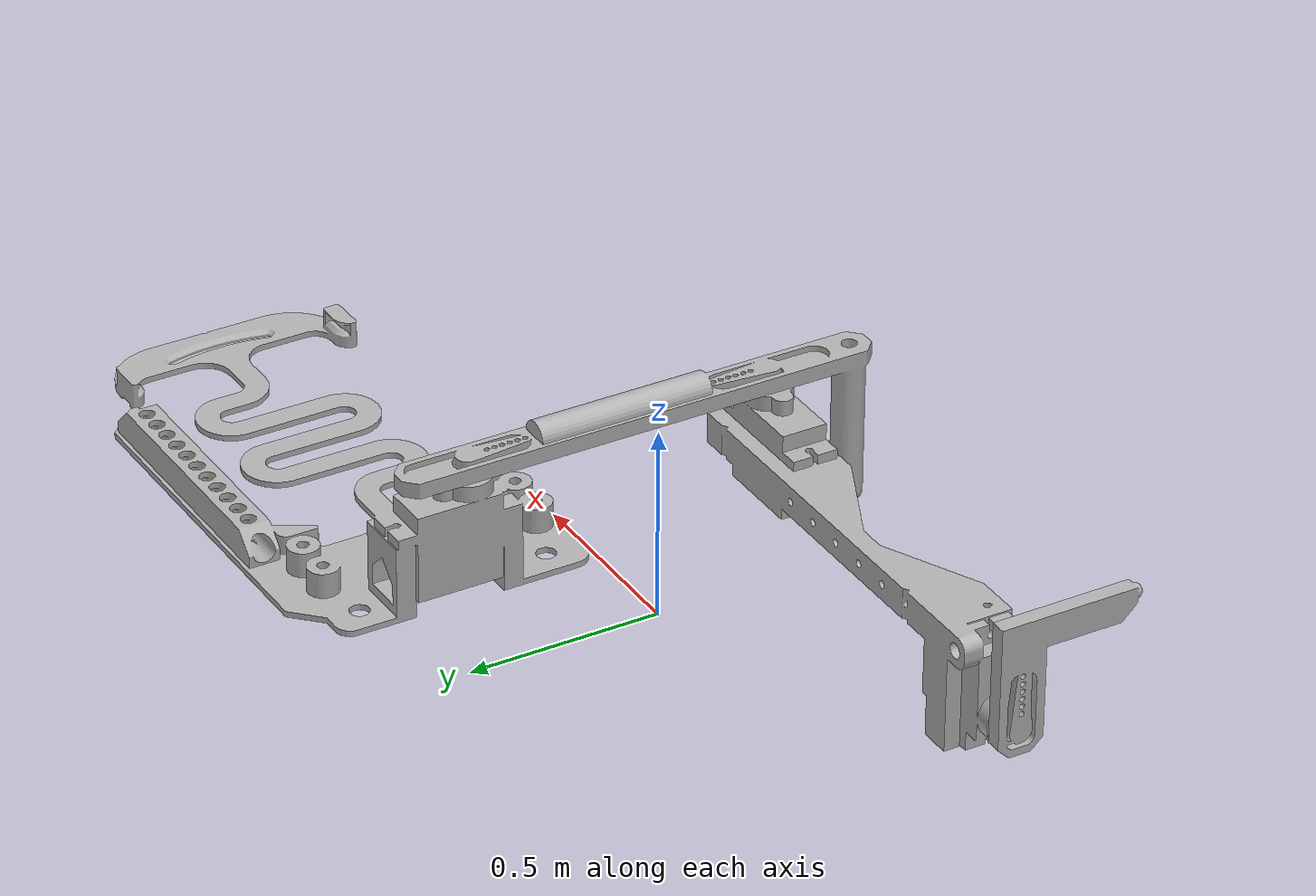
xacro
<?xml version="1.0" ?>
<robot name="brachiograph" xmlns:xacro="http://www.ros.org/wiki/xacro">

  <xacro:property name="enable_collision" value="false"/>

  <xacro:include filename="$(find brachiograph_description)/urdf/materials.xacro" />
  <xacro:include filename="$(find brachiograph_description)/urdf/brachiograph.trans" />
  <xacro:include filename="$(find brachiograph_description)/urdf/brachiograph.gazebo" />

  <link name="world" />
  <joint name="virtual_joint" type="fixed">
    <parent link="world"/>
    <child link="base_link"/>
    <origin rpy="0 0 0" xyz="0 0 0.2"/>
  </joint>

  <link name="base_link">
    <inertial>
      <origin xyz="0.002038734351763583 0.6163329250273015 0.13019136686713387" rpy="0 0 0"/>
      <mass value="94.55629235069185"/>
      <inertia ixx="3.586818" iyy="-11.784401" izz="-9.34816" ixy="-6.30954" iyz="0.868916" ixz="-1.087526"/>
    </inertial>
    <visual>
      <origin xyz="0 0 0" rpy="0 0 0"/>
      <geometry>
        <mesh filename="package://brachiograph_description/meshes/base_link.stl"/>
      </geometry>
      <material name="silver"/>
    </visual>
    <xacro:if value="${enable_collision}">
      <collision>
        <origin xyz="0 0 0" rpy="0 0 0"/>
        <geometry>
          <mesh filename="package://brachiograph_description/meshes/base_link.stl"/>
        </geometry>
      </collision>
    </xacro:if>
  </link>

  <link name="arm_inner">
    <inertial>
      <origin xyz="0.0007776176557930947 -0.5706676824649911 -0.05236239386525232" rpy="0 0 0"/>
      <mass value="56.23217141870967"/>
      <inertia ixx="8.305523" iyy="0.732315" izz="7.651352" ixy="0.00165" iyz="-1.334231" ixz="0.000662"/>
    </inertial>
    <visual>
      <origin xyz="-0.054 -0.473 -0.34" rpy="0 0 0"/>
      <geometry>
        <mesh filename="package://brachiograph_description/meshes/arm_inner.stl"/>
      </geometry>
      <material name="silver"/>
    </visual>
    <xacro:if value="${enable_collision}">
      <collision>
        <origin xyz="-0.054 -0.473 -0.34" rpy="0 0 0"/>
        <geometry>
          <mesh filename="package://brachiograph_description/meshes/arm_inner.stl"/>
        </geometry>
      </collision>
    </xacro:if>
  </link>

  <link name="arm_outer">
    <inertial>
      <origin xyz="-0.4932433657827786 0.015946089239345485 -0.22633452294992504" rpy="0 0 0"/>
      <mass value="179.1806897234528"/>
      <inertia ixx="1.873827" iyy="30.244521" izz="29.062283" ixy="0.115055" iyz="-0.057468" ixz="-3.912259"/>
    </inertial>
    <visual>
      <origin xyz="-0.054001 0.327 -0.34" rpy="0 0 0"/>
      <geometry>
        <mesh filename="package://brachiograph_description/meshes/arm_outer.stl"/>
      </geometry>
      <material name="silver"/>
    </visual>
    <xacro:if value="${enable_collision}">
      <collision>
        <origin xyz="-0.054001 0.327 -0.34" rpy="0 0 0"/>
        <geometry>
          <mesh filename="package://brachiograph_description/meshes/arm_outer.stl"/>
        </geometry>
      </collision>
    </xacro:if>
  </link>

  <link name="lifter">
    <inertial>
      <origin xyz="0.0024768062869799934 -0.06066608676406571 0.1699123800664735" rpy="0 0 0"/>
      <mass value="17.339728310347706"/>
      <inertia ixx="0.341809" iyy="0.178232" izz="0.168295" ixy="-0.000501" iyz="0.0869" ixz="0.000712"/>
    </inertial>
    <visual>
      <origin xyz="1.034011 0.327519 0.016978" rpy="0 0 0"/>
      <geometry>
        <mesh filename="package://brachiograph_description/meshes/lifter.stl"/>
      </geometry>
      <material name="silver"/>
    </visual>
    <xacro:if value="${enable_collision}">
      <collision>
        <origin xyz="1.034011 0.327519 0.016978" rpy="0 0 0"/>
        <geometry>
          <mesh filename="package://brachiograph_description/meshes/lifter.stl"/>
        </geometry>
      </collision>
    </xacro:if>
  </link>

  <joint name="joint1" type="continuous">
    <origin xyz="0.054 0.473 0.34" rpy="0 0 0"/>
    <parent link="base_link"/>
    <child link="arm_inner"/>
    <axis xyz="0.0 0.0 1.0"/>
    <limit effort="100" lower="${-pi}" upper="${pi}" velocity="1.0"/>
  </joint>

  <joint name="joint2" type="continuous">
    <origin xyz="1e-06 -0.8 0.0" rpy="0 0 0"/>
    <parent link="arm_inner"/>
    <child link="arm_outer"/>
    <axis xyz="-0.0 0.0 -1.0"/>
    <limit effort="100" lower="${-pi}" upper="${pi}" velocity="1.0"/>
  </joint>

  <joint name="joint3" type="continuous">
    <origin xyz="-1.088012 -0.000519 -0.356978" rpy="0 0 0"/>
    <parent link="arm_outer"/>
    <child link="lifter"/>
    <axis xyz="-1.0 -0.0 0.0"/>
    <limit effort="100" lower="${-pi}" upper="${pi}" velocity="1.0"/>
  </joint>

</robot>

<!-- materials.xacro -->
<robot name="brachiograph" xmlns:xacro="http://www.ros.org/wiki/xacro" >

<material name="silver">
  <color rgba="0.700 0.700 0.700 1.000"/>
</material>

</robot>

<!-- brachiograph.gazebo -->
<robot name="brachiograph" xmlns:xacro="http://www.ros.org/wiki/xacro" >

    <xacro:property name="body_color" value="Gazebo/Silver"/>

    <!-- ros_control plugin -->
    <gazebo>
    <plugin name="ros_control" filename="libgazebo_ros_control.so">
        <robotNamespace>/brachiograph</robotNamespace>
    </plugin>
    </gazebo>

    <gazebo reference="base_link">
    <material>${body_color}</material>
    <mu1>0.2</mu1>
    <mu2>0.2</mu2>
    <selfCollide>false</selfCollide> <!-- Not working, still collides -->
    <gravity>true</gravity>
    </gazebo>

    <gazebo reference="arm_inner">
    <material>${body_color}</material>
    <mu1>0.2</mu1>
    <mu2>0.2</mu2>
    <selfCollide>false</selfCollide>
    </gazebo>

    <gazebo reference="arm_outer">
    <material>${body_color}</material>
    <mu1>0.2</mu1>
    <mu2>0.2</mu2>
    <selfCollide>false</selfCollide>
    </gazebo>

    <gazebo reference="lifter">
    <material>${body_color}</material>
    <mu1>0.2</mu1>
    <mu2>0.2</mu2>
    <selfCollide>false</selfCollide>
    </gazebo>

</robot>
